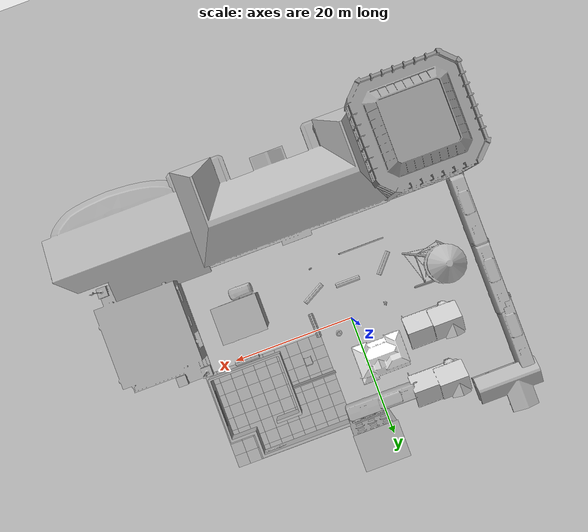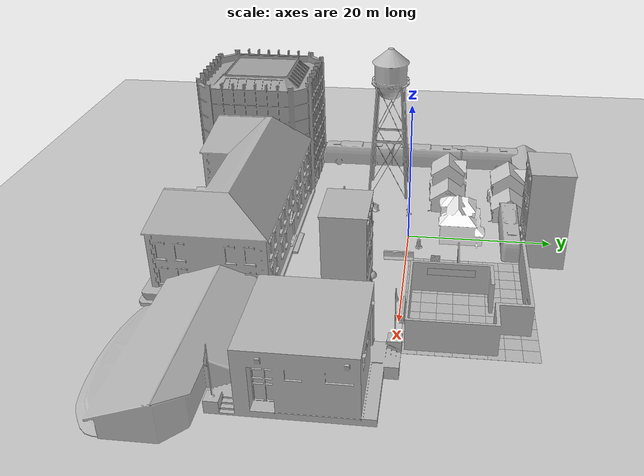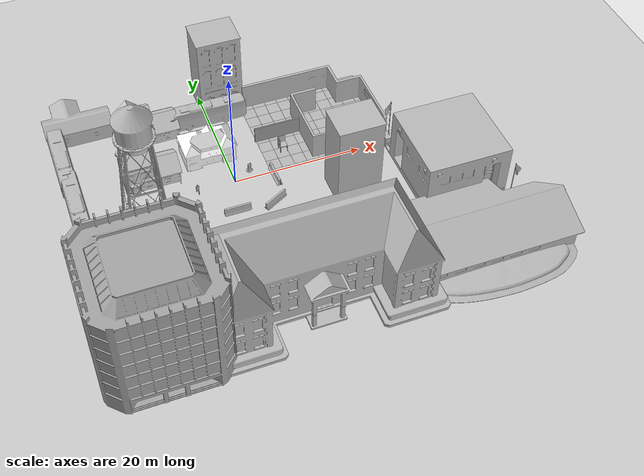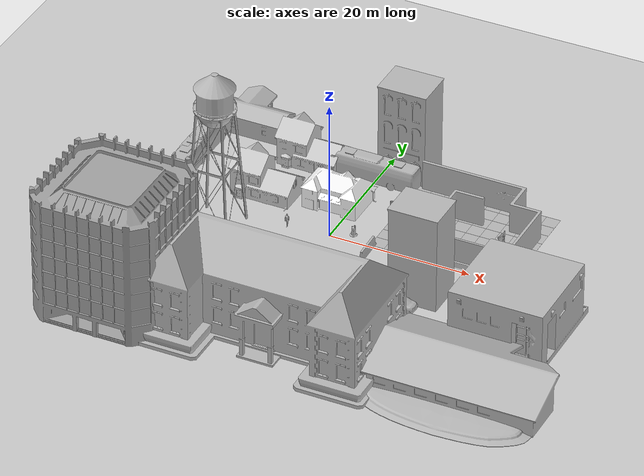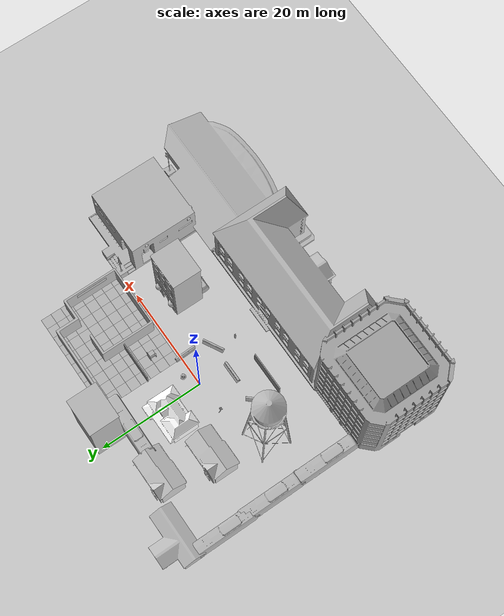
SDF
<sdf version="1.6">
 <world name="default">
  <light name="sun" type="directional">
   <pose>0 0 10 0 -0 0</pose>
   <diffuse>0.8 0.8 0.8 1</diffuse>
   <specular>0.2 0.2 0.2 1</specular>
   <attenuation>
    <range>1000</range>
    <constant>0.9</constant>
    <linear>0.01</linear>
    <quadratic>0.001</quadratic>
   </attenuation>
   <direction>-0.5 0.1 -0.9</direction>
  </light>
  <light name="sun2" type="directional">
   <cast_shadows>0</cast_shadows>
   <pose>0 0 0.5 3.14 -0 0</pose>
   <diffuse>0.8 0.8 0.8 1</diffuse>
   <specular>0.2 0.2 0.2 1</specular>
   <attenuation>
    <range>1000</range>
    <constant>0.9</constant>
    <linear>0.01</linear>
    <quadratic>0.001</quadratic>
   </attenuation>
   <direction>-0.5 0.1 -0.9</direction>
  </light>
  <light name="sun2" type="directional">
   <cast_shadows>0</cast_shadows>
   <pose>0 0 0.1 3.14 -0 0</pose>
   <diffuse>0.8 0.8 0.8 1</diffuse>
   <specular>0.2 0.2 0.2 1</specular>
   <attenuation>
    <range>1000</range>
    <constant>10</constant>
    <linear>0.01</linear>
    <quadratic>0.001</quadratic>
   </attenuation>
   <direction>-0.5 0.1 -0.9</direction>
  </light>
  <model name="ground_plane">
   <pose>0 0 0 0 -0 1.57079</pose>
   <static>1</static>
   <link name="link">
    <collision name="collision">
     <geometry><plane><normal>0 0 1</normal><size>100 100</size></plane></geometry>
     <surface><friction><ode><mu>100000</mu><mu2>100000</mu2></ode></friction></surface>
    </collision>
    <visual name="visual">
     <cast_shadows>0</cast_shadows>
     <geometry><plane><normal>0 0 1</normal><size>32 50</size></plane></geometry>
     <material>
      <script><uri>file://media/materials/scripts/gazebo.material</uri><name>Gazebo/Grey</name></script>
     </material>
    </visual>
    <velocity_decay><linear>0</linear><angular>0</angular></velocity_decay>
   </link>
  </model>
  <physics name="default_physics" default="0" type="ode">
   <max_step_size>0.001</max_step_size>
   <real_time_factor>1</real_time_factor>
   <real_time_update_rate>1000</real_time_update_rate>
  </physics>
  <scene><ambient>0.4 0.4 0.4 1</ambient><background>0.7 0.7 0.7 1</background><shadows>1</shadows></scene>
  <model name="House 3">
   <static>1</static>
   <link name="link">
    <collision name="collision">
     <geometry><mesh><uri>model://house_3/meshes/house_3.dae</uri><scale>1 1 1</scale></mesh></geometry>
    </collision>
    <visual name="visual">
     <geometry><mesh><uri>model://house_3/meshes/house_3.dae</uri><scale>1 1 1</scale></mesh></geometry>
     <material>
      <script>
       <uri>model://house_3/materials/scripts</uri>
       <uri>model://house_3/materials/textures</uri>
       <uri>model://house_1/materials/textures</uri>
       <name>House_3/Diffuse</name>
      </script>
      <shader type="normal_map_object_space">
       <normal_map>model://house_1/materials/textures/House_1_Normal.png</normal_map>
      </shader>
     </material>
    </visual>
    <velocity_decay><linear>0</linear><angular>0</angular></velocity_decay>
   </link>
   <pose>-11.4334 5.35082 0 0 -0 0</pose>
  </model>
  <model name="House 2">
   <static>1</static>
   <link name="link">
    <collision name="collision">
     <geometry><mesh><uri>model://house_2/meshes/house_2.dae</uri><scale>1 1 1</scale></mesh></geometry>
    </collision>
    <visual name="visual">
     <geometry><mesh><uri>model://house_2/meshes/house_2.dae</uri><scale>1 1 1</scale></mesh></geometry>
     <material>
      <script>
       <uri>model://house_2/materials/scripts</uri>
       <uri>model://house_2/materials/textures</uri>
       <uri>model://house_1/materials/textures</uri>
       <name>House_2/Diffuse</name>
      </script>
      <shader type="normal_map_object_space">
       <normal_map>model://house_1/materials/textures/House_1_Normal.png</normal_map>
      </shader>
     </material>
    </visual>
    <velocity_decay><linear>0</linear><angular>0</angular></velocity_decay>
   </link>
   <pose>-2.90396 6.95153 0 0 -0 0</pose>
  </model>
  <model name="jersey_barrier">
   <static>1</static>
   <link name="link">
    <visual name="visual">
     <geometry>
      <mesh><uri>model://jersey_barrier/meshes/jersey_barrier.dae</uri><scale>1 1 1</scale></mesh>
     </geometry>
    </visual>
    <collision name="upright">
     <pose>0 0 0.5715 0 -0 0</pose>
     <geometry><box><size>4.06542 0.3063 1.143</size></box></geometry>
    </collision>
    <collision name="base">
     <pose>0 0 0.032258 0 -0 0</pose>
     <geometry><box><size>4.06542 0.8107 0.064516</size></box></geometry>
    </collision>
    <collision name="base2">
     <pose>0 0 0.1 0 -0 0</pose>
     <geometry><box><size>4.06542 0.65 0.1</size></box></geometry>
    </collision>
    <collision name="base3">
     <pose>0 0 0.2 0 -0 0</pose>
     <geometry><box><size>4.06542 0.5 0.1</size></box></geometry>
    </collision>
    <collision name="left-angle">
     <pose>0 -0.224 0.2401 0.9 -0 0</pose>
     <geometry><box><size>4.06542 0.5 0.064516</size></box></geometry>
    </collision>
    <collision name="right-angle">
     <pose>0 0.224 0.2401 -0.9 0 0</pose>
     <geometry><box><size>4.06542 0.5 0.064516</size></box></geometry>
    </collision>
    <velocity_decay><linear>0</linear><angular>0</angular></velocity_decay>
   </link>
   <pose>4.36849 -5.89471 0 0 -0 0.5</pose>
  </model>
  <model name="jersey_barrier_0">
   <static>1</static>
   <link name="link">
    <visual name="visual">
     <geometry>
      <mesh><uri>model://jersey_barrier/meshes/jersey_barrier.dae</uri><scale>1 1 1</scale></mesh>
     </geometry>
    </visual>
    <collision name="upright">
     <pose>0 0 0.5715 0 -0 0</pose>
     <geometry><box><size>4.06542 0.3063 1.143</size></box></geometry>
    </collision>
    <collision name="base">
     <pose>0 0 0.032258 0 -0 0</pose>
     <geometry><box><size>4.06542 0.8107 0.064516</size></box></geometry>
    </collision>
    <collision name="base2">
     <pose>0 0 0.1 0 -0 0</pose>
     <geometry><box><size>4.06542 0.65 0.1</size></box></geometry>
    </collision>
    <collision name="base3">
     <pose>0 0 0.2 0 -0 0</pose>
     <geometry><box><size>4.06542 0.5 0.1</size></box></geometry>
    </collision>
    <collision name="left-angle">
     <pose>0 -0.224 0.2401 0.9 -0 0</pose>
     <geometry><box><size>4.06542 0.5 0.064516</size></box></geometry>
    </collision>
    <collision name="right-angle">
     <pose>0 0.224 0.2401 -0.9 0 0</pose>
     <geometry><box><size>4.06542 0.5 0.064516</size></box></geometry>
    </collision>
    <velocity_decay><linear>0</linear><angular>0</angular></velocity_decay>
   </link>
   <pose>6 -1 0 0 -0 1.6</pose>
  </model>
  <model name="grey_wall">
   <static>1</static>
   <link name="link">
    <pose>0 0 1.4 0 -0 0</pose>
    <collision name="collision"><geometry><box><size>7.5 0.2 2.8</size></box></geometry></collision>
    <visual name="visual">
     <cast_shadows>0</cast_shadows>
     <geometry><box><size>7.5 0.2 2.8</size></box></geometry>
     <material>
      <script>
       <uri>model://grey_wall/materials/scripts</uri>
       <uri>model://grey_wall/materials/textures</uri>
       <name>vrc/grey_wall</name>
      </script>
     </material>
    </visual>
    <velocity_decay><linear>0</linear><angular>0</angular></velocity_decay>
   </link>
   <pose>9.22906 7.08542 0 0 -0 0</pose>
  </model>
  <model name="nist_elevated_floor_120">
   <static>1</static>
   <link name="nist_elevated_floor_120">
    <collision name="collision">
     <geometry>
      <mesh><uri>model://nist_elevated_floor_120/meshes/nist_elevated_floor_120.dae</uri><scale>1 1 1</scale></mesh>
     </geometry>
    </collision>
    <visual name="visual">
     <geometry>
      <mesh><uri>model://nist_elevated_floor_120/meshes/nist_elevated_floor_120.dae</uri><scale>1 1 1</scale></mesh>
     </geometry>
    </visual>
    <velocity_decay><linear>0</linear><angular>0</angular></velocity_decay>
   </link>
   <pose>9 4 0 0 -0 0</pose>
  </model>
  <model name="nist_maze_wall_240">
   <static>1</static>
   <link name="nist__maze_wall_240_link">
    <collision name="collision">
     <geometry>
      <mesh><uri>model://nist_maze_wall_240/meshes/nist_maze_wall_240.dae</uri><scale>1 1 1</scale></mesh>
     </geometry>
    </collision>
    <visual name="visual">
     <geometry>
      <mesh><uri>model://nist_maze_wall_240/meshes/nist_maze_wall_240.dae</uri><scale>1 1 1</scale></mesh>
     </geometry>
    </visual>
    <velocity_decay><linear>0</linear><angular>0</angular></velocity_decay>
   </link>
   <pose>9 4 0 0 -0 0</pose>
  </model>
  <model name="nist">
   <static>1</static>
   <link name="nist_maze_wall_triple_holes_120_link">
    <collision name="collision">
     <geometry>
      <mesh>
       <uri>model://nist_maze_wall_triple_holes_120/meshes/nist_maze_wall_triple_holes_120.dae</uri>
       <scale>1 1 1</scale>
      </mesh>
     </geometry>
    </collision>
    <visual name="visual">
     <geometry>
      <mesh>
       <uri>model://nist_maze_wall_triple_holes_120/meshes/nist_maze_wall_triple_holes_120.dae</uri>
       <scale>1 1 1</scale>
      </mesh>
     </geometry>
    </visual>
    <velocity_decay><linear>0</linear><angular>0</angular></velocity_decay>
   </link>
   <pose>9.02578 4.02961 1.2 0 -0 1.6</pose>
  </model>
  <gravity>0 0 -9.8</gravity>
  <magnetic_field>6e-06 2.3e-05 -4.2e-05</magnetic_field>
  <atmosphere type="adiabatic"/>
  <spherical_coordinates>
   <surface_model>EARTH_WGS84</surface_model>
   <latitude_deg>0</latitude_deg>
   <longitude_deg>0</longitude_deg>
   <elevation>0</elevation>
   <heading_deg>0</heading_deg>
  </spherical_coordinates>
  <model name="law_office">
   <static>1</static>
   <link name="link">
    <collision name="collision">
     <pose>0 0 6.96244 0 -0 0</pose>
     <geometry><box><size>6.84401 5.43165 13.9249</size></box></geometry>
    </collision>
    <visual name="visual">
     <geometry><mesh><uri>model://law_office/meshes/law_office.dae</uri><scale>1 1 1</scale></mesh></geometry>
    </visual>
   </link>
   <pose>16.2672 -6.65404 0 0 -0 3.14</pose>
  </model>
  <model name="water_tower">
   <static>1</static>
   <link name="link">
    <collision name="collision">
     <geometry><mesh><uri>model://water_tower/meshes/water_tower.dae</uri><scale>1 1 1</scale></mesh></geometry>
    </collision>
    <visual name="visual">
     <geometry><mesh><uri>model://water_tower/meshes/water_tower.dae</uri><scale>1 1 1</scale></mesh></geometry>
    </visual>
   </link>
   <pose>-14.4505 -4.0045 0 0 -0 0</pose>
  </model>
  <model name="jersey_barrier_1">
   <static>1</static>
   <link name="link">
    <visual name="visual">
     <geometry>
      <mesh><uri>model://jersey_barrier/meshes/jersey_barrier.dae</uri><scale>1 1 1</scale></mesh>
     </geometry>
    </visual>
    <collision name="upright">
     <pose>0 0 0.5715 0 -0 0</pose>
     <geometry><box><size>4.06542 0.3063 1.143</size></box></geometry>
    </collision>
    <collision name="base">
     <pose>0 0 0.032258 0 -0 0</pose>
     <geometry><box><size>4.06542 0.8107 0.064516</size></box></geometry>
    </collision>
    <collision name="base2">
     <pose>0 0 0.1 0 -0 0</pose>
     <geometry><box><size>4.06542 0.65 0.1</size></box></geometry>
    </collision>
    <collision name="base3">
     <pose>0 0 0.2 0 -0 0</pose>
     <geometry><box><size>4.06542 0.5 0.1</size></box></geometry>
    </collision>
    <collision name="left-angle">
     <pose>0 -0.224 0.2401 0.9 -0 0</pose>
     <geometry><box><size>4.06542 0.5 0.064516</size></box></geometry>
    </collision>
    <collision name="right-angle">
     <pose>0 0.224 0.2401 -0.9 0 0</pose>
     <geometry><box><size>4.06542 0.5 0.064516</size></box></geometry>
    </collision>
   </link>
   <pose>-1.46939 -5.79868 0 0 -0 0</pose>
  </model>
  <model name="jersey_barrier_2">
   <static>1</static>
   <link name="link">
    <visual name="visual">
     <geometry>
      <mesh><uri>model://jersey_barrier/meshes/jersey_barrier.dae</uri><scale>1 1 1</scale></mesh>
     </geometry>
    </visual>
    <collision name="upright">
     <pose>0 0 0.5715 0 -0 0</pose>
     <geometry><box><size>4.06542 0.3063 1.143</size></box></geometry>
    </collision>
    <collision name="base">
     <pose>0 0 0.032258 0 -0 0</pose>
     <geometry><box><size>4.06542 0.8107 0.064516</size></box></geometry>
    </collision>
    <collision name="base2">
     <pose>0 0 0.1 0 -0 0</pose>
     <geometry><box><size>4.06542 0.65 0.1</size></box></geometry>
    </collision>
    <collision name="base3">
     <pose>0 0 0.2 0 -0 0</pose>
     <geometry><box><size>4.06542 0.5 0.1</size></box></geometry>
    </collision>
    <collision name="left-angle">
     <pose>0 -0.224 0.2401 0.9 -0 0</pose>
     <geometry><box><size>4.06542 0.5 0.064516</size></box></geometry>
    </collision>
    <collision name="right-angle">
     <pose>0 0.224 0.2401 -0.9 0 0</pose>
     <geometry><box><size>4.06542 0.5 0.064516</size></box></geometry>
    </collision>
   </link>
   <pose>-8.02163 -6.59824 0 0 -0 0.85</pose>
  </model>
  <model name="grey_wall_0">
   <static>1</static>
   <link name="link">
    <pose>0 0 1.4 0 -0 0</pose>
    <collision name="collision"><geometry><box><size>7.5 0.2 2.8</size></box></geometry></collision>
    <visual name="visual">
     <cast_shadows>0</cast_shadows>
     <geometry><box><size>7.5 0.2 2.8</size></box></geometry>
     <material>
      <script>
       <uri>model://grey_wall/materials/scripts</uri>
       <uri>model://grey_wall/materials/textures</uri>
       <name>vrc/grey_wall</name>
      </script>
     </material>
    </visual>
   </link>
   <pose>-5.40128 -10.5 0 0 -0 0</pose>
  </model>
  <model name="jersey_barrier_3">
   <static>1</static>
   <link name="link">
    <visual name="visual">
     <geometry>
      <mesh><uri>model://jersey_barrier/meshes/jersey_barrier.dae</uri><scale>1 1 1</scale></mesh>
     </geometry>
    </visual>
    <collision name="upright">
     <pose>0 0 0.5715 0 -0 0</pose>
     <geometry><box><size>4.06542 0.3063 1.143</size></box></geometry>
    </collision>
    <collision name="base">
     <pose>0 0 0.032258 0 -0 0</pose>
     <geometry><box><size>4.06542 0.8107 0.064516</size></box></geometry>
    </collision>
    <collision name="base2">
     <pose>0 0 0.1 0 -0 0</pose>
     <geometry><box><size>4.06542 0.65 0.1</size></box></geometry>
    </collision>
    <collision name="base3">
     <pose>0 0 0.2 0 -0 0</pose>
     <geometry><box><size>4.06542 0.5 0.1</size></box></geometry>
    </collision>
    <collision name="left-angle">
     <pose>0 -0.224 0.2401 0.9 -0 0</pose>
     <geometry><box><size>4.06542 0.5 0.064516</size></box></geometry>
    </collision>
    <collision name="right-angle">
     <pose>0 0.224 0.2401 -0.9 0 0</pose>
     <geometry><box><size>4.06542 0.5 0.064516</size></box></geometry>
    </collision>
   </link>
   <pose>18.2364 0.418347 0 0 -0 0</pose>
  </model>
  <model name="person_standing">
   <link name="link">
    <inertial>
     <pose>0 -0.1 0.95 0 -0 0</pose>
     <mass>80</mass>
     <inertia><ixx>24.88</ixx><ixy>0</ixy><ixz>0</ixz><iyy>25.73</iyy><iyz>0</iyz><izz>2.48</izz></inertia>
    </inertial>
    <collision name="bottom">
     <pose>0 -0.1 0.01 0 -0 0</pose>
     <geometry><box><size>0.5 0.35 0.02</size></box></geometry>
    </collision>
    <collision name="person">
     <pose>0 0 0.02 0.04 -0 0</pose>
     <geometry><mesh><uri>model://person_standing/meshes/standing.dae</uri><scale>1 1 1</scale></mesh></geometry>
    </collision>
    <visual name="visual">
     <pose>0 0 0.02 0.04 -0 0</pose>
     <geometry><mesh><uri>model://person_standing/meshes/standing.dae</uri><scale>1 1 1</scale></mesh></geometry>
    </visual>
   </link>
   <pose>3.49958 -9.80762 -1e-06 -1e-06 1e-06 0.008643</pose>
  </model>
  <model name="person_walking">
   <link name="link">
    <inertial>
     <pose>0 0 0.95 0 -0 0</pose>
     <mass>80</mass>
     <inertia><ixx>27.82</ixx><ixy>0</ixy><ixz>0</ixz><iyy>24.88</iyy><iyz>0</iyz><izz>4.57</izz></inertia>
    </inertial>
    <collision name="bottom">
     <pose>0 0 0.01 0 -0 0</pose>
     <geometry><box><size>0.35 0.75 0.02</size></box></geometry>
    </collision>
    <collision name="person">
     <pose>0 0 -0.02 0 -0 0</pose>
     <geometry><mesh><uri>model://person_walking/meshes/walking.dae</uri><scale>1 1 1</scale></mesh></geometry>
    </collision>
    <visual name="visual">
     <pose>0 0 -0.02 0 -0 0</pose>
     <geometry><mesh><uri>model://person_walking/meshes/walking.dae</uri><scale>1 1 1</scale></mesh></geometry>
    </visual>
   </link>
   <pose>-5.95501 -0.332973 -1e-06 -2e-06 1e-06 0.010121</pose>
  </model>
  <model name="House 3_0">
   <static>1</static>
   <link name="link">
    <collision name="collision">
     <geometry><mesh><uri>model://house_3/meshes/house_3.dae</uri><scale>1 1 1</scale></mesh></geometry>
    </collision>
    <visual name="visual">
     <geometry><mesh><uri>model://house_3/meshes/house_3.dae</uri><scale>1 1 1</scale></mesh></geometry>
     <material>
      <script>
       <uri>model://house_3/materials/scripts</uri>
       <uri>model://house_3/materials/textures</uri>
       <name>House_3/Diffuse</name>
      </script>
     </material>
    </visual>
   </link>
   <pose>-9.13577 14.4735 0 0 -0 0</pose>
  </model>
  <model name="Construction Barrel_0">
   <static>1</static>
   <link name="link">
    <inertial>
     <pose>0 0 0.4 0 -0 0</pose>
     <mass>500</mass>
     <inertia><ixx>51.2096</ixx><iyy>51.2096</iyy><izz>25</izz><ixy>0</ixy><ixz>0</ixz><iyz>0</iyz></inertia>
    </inertial>
    <collision name="collision">
     <geometry>
      <mesh><uri>model://construction_barrel/meshes/construction_barrel.dae</uri><scale>1 1 1</scale></mesh>
     </geometry>
    </collision>
    <visual name="visual">
     <geometry>
      <mesh><uri>model://construction_barrel/meshes/construction_barrel.dae</uri><scale>1 1 1</scale></mesh>
     </geometry>
    </visual>
   </link>
   <pose>2.75498 1.58999 0 0 -0 0</pose>
  </model>
  <model name="Office Building">
   <static>1</static>
   <link name="link">
    <collision name="collision">
     <geometry><mesh><uri>model://office_building/meshes/office_building.dae</uri></mesh></geometry>
    </collision>
    <visual name="visual">
     <geometry><mesh><uri>model://office_building/meshes/office_building.dae</uri></mesh></geometry>
    </visual>
   </link>
   <pose>-18.2899 -24.5769 0 0 -0 0</pose>
  </model>
  <model name="post_office">
   <static>1</static>
   <link name="link">
    <collision name="collision">
     <geometry><mesh><uri>model://post_office/meshes/post_office.dae</uri></mesh></geometry>
    </collision>
    <visual name="visual">
     <geometry><mesh><uri>model://post_office/meshes/post_office.dae</uri></mesh></geometry>
    </visual>
   </link>
   <pose>-19.9426 17.8741 0 0 -0 0</pose>
  </model>
  <model name="school">
   <static>1</static>
   <link name="link">
    <collision name="collision">
     <geometry><mesh><uri>model://school/meshes/school.dae</uri></mesh></geometry>
    </collision>
    <visual name="visual"><geometry><mesh><uri>model://school/meshes/school.dae</uri></mesh></geometry></visual>
   </link>
   <pose>3.77452 -21.39 0 0 -0 0</pose>
  </model>
  <model name="osrf_first_office">
   <static>1</static>
   <link name="link">
    <collision name="collision">
     <geometry><mesh><uri>model://osrf_first_office/meshes/osrf_first_office.dae</uri></mesh></geometry>
    </collision>
    <visual name="visual">
     <geometry><mesh><uri>model://osrf_first_office/meshes/osrf_first_office.dae</uri></mesh></geometry>
    </visual>
   </link>
   <pose>30.2865 -22.0351 0 0 -0 0</pose>
  </model>
  <model name="police_station">
   <static>1</static>
   <link name="link">
    <collision name="collision_main">
     <pose>0 0 4.28998 0 -0 0</pose>
     <geometry><box><size>13.037 13.037 8.57995</size></box></geometry>
    </collision>
    <collision name="collision_landing">
     <pose>0 0 0.464086 0 -0 0</pose>
     <geometry><box><size>13.037 16.2446 0.928173</size></box></geometry>
    </collision>
    <visual name="visual">
     <geometry><mesh><uri>model://police_station/meshes/police_station.dae</uri></mesh></geometry>
    </visual>
   </link>
   <pose>30.6595 -9.0985 0 0 -0 0</pose>
  </model>
  <model name="Starting Pen">
   <static>1</static>
   <link name="link">
    <collision name="wall_01">
     <pose>-0 0 2.14 0 -0 0</pose>
     <geometry><box><size>12.15 0.31 4.28</size></box></geometry>
    </collision>
    <collision name="wall_02">
     <pose>-5.28 14.3205 2.14 0 -0 0</pose>
     <geometry><box><size>14.8 0.46 4.28</size></box></geometry>
    </collision>
    <collision name="wall_03">
     <pose>-5.91 5 2.14 0 -0 0</pose>
     <geometry><box><size>0.385 10.3 4.28</size></box></geometry>
    </collision>
    <collision name="wall_04">
     <pose>5.91 5.161 2.14 0 -0 0</pose>
     <geometry><box><size>0.385 10.66 4.28</size></box></geometry>
    </collision>
    <collision name="wall_05">
     <pose>3.9 10.285 2.14 0 -0 0</pose>
     <geometry><box><size>4.38 0.45 4.28</size></box></geometry>
    </collision>
    <collision name="wall_06">
     <pose>-4 9.95 2.14 0 -0 0</pose>
     <geometry><box><size>4.25 0.45 4.28</size></box></geometry>
    </collision>
    <collision name="wall_07">
     <pose>1.94 12.3 2.14 0 -0 0</pose>
     <geometry><box><size>0.45 4.5 4.28</size></box></geometry>
    </collision>
    <collision name="wall_arrow">
     <pose>-0.232 14.03 2.46 0 -0 0</pose>
     <geometry><box><size>3.33 0.12 1.16</size></box></geometry>
    </collision>
    <collision name="collision_floor">
     <pose>-3.21 7.355 0 0 -0 0</pose>
     <geometry><box><size>20 16 0.01</size></box></geometry>
     <surface><friction><ode><mu>100</mu><mu2>50</mu2></ode></friction></surface>
    </collision>
    <visual name="visual_osrf">
     <pose>-5.74 4.99 3 0 -0 0</pose>
     <geometry><box><size>0.01 6 1</size></box></geometry>
     <material>
      <script>
       <uri>model://starting_pen/materials/scripts</uri>
       <uri>model://starting_pen/materials/textures</uri>
       <name>StartingPen/OSRF</name>
      </script>
     </material>
    </visual>
    <visual name="visual_osrf_2">
     <pose>5.74 4.99 3 0 -0 0</pose>
     <geometry><box><size>0.01 6 1</size></box></geometry>
     <material>
      <script>
       <uri>model://starting_pen/materials/scripts</uri>
       <uri>model://starting_pen/materials/textures</uri>
       <name>StartingPen/OSRF</name>
      </script>
     </material>
    </visual>
    <visual name="visual">
     <geometry><mesh><uri>model://starting_pen/meshes/starting_pen.dae</uri></mesh></geometry>
    </visual>
    <visual name="visual_floor_0">
     <pose>-12.21 0.35 0 0 -0 0</pose>
     <geometry><box><size>2 2 0.01</size></box></geometry>
     <material>
      <script>
       <uri>model://starting_pen/materials/scripts</uri>
       <uri>model://starting_pen/materials/textures</uri>
       <name>StartingPen/Floor</name>
      </script>
     </material>
    </visual>
    <visual name="visual_floor_1">
     <pose>-10.21 0.35 0 0 -0 0</pose>
     <geometry><box><size>2 2 0.01</size></box></geometry>
     <material>
      <script>
       <uri>model://starting_pen/materials/scripts</uri>
       <uri>model://starting_pen/materials/textures</uri>
       <name>StartingPen/Floor</name>
      </script>
     </material>
    </visual>
    <visual name="visual_floor_2">
     <pose>-8.21 0.35 0 0 -0 0</pose>
     <geometry><box><size>2 2 0.01</size></box></geometry>
     <material>
      <script>
       <uri>model://starting_pen/materials/scripts</uri>
       <uri>model://starting_pen/materials/textures</uri>
       <name>StartingPen/Floor</name>
      </script>
     </material>
    </visual>
    <visual name="visual_floor_3">
     <pose>-6.21 0.35 0 0 -0 0</pose>
     <geometry><box><size>2 2 0.01</size></box></geometry>
     <material>
      <script>
       <uri>model://starting_pen/materials/scripts</uri>
       <uri>model://starting_pen/materials/textures</uri>
       <name>StartingPen/Floor</name>
      </script>
     </material>
    </visual>
    <visual name="visual_floor_4">
     <pose>-4.21 0.35 0 0 -0 0</pose>
     <geometry><box><size>2 2 0.01</size></box></geometry>
     <material>
      <script>
       <uri>model://starting_pen/materials/scripts</uri>
       <uri>model://starting_pen/materials/textures</uri>
       <name>StartingPen/Floor</name>
      </script>
     </material>
    </visual>
    <visual name="visual_floor_5">
     <pose>-2.21 0.35 0 0 -0 0</pose>
     <geometry><box><size>2 2 0.01</size></box></geometry>
     <material>
      <script>
       <uri>model://starting_pen/materials/scripts</uri>
       <uri>model://starting_pen/materials/textures</uri>
       <name>StartingPen/Floor</name>
      </script>
     </material>
    </visual>
    <visual name="visual_floor_6">
     <pose>-0.21 0.35 0 0 -0 0</pose>
     <geometry><box><size>2 2 0.01</size></box></geometry>
     <material>
      <script>
       <uri>model://starting_pen/materials/scripts</uri>
       <uri>model://starting_pen/materials/textures</uri>
       <name>StartingPen/Floor</name>
      </script>
     </material>
    </visual>
    <visual name="visual_floor_7">
     <pose>1.79 0.35 0 0 -0 1.5707</pose>
     <geometry><box><size>2 2 0.01</size></box></geometry>
     <material>
      <script>
       <uri>model://starting_pen/materials/scripts</uri>
       <uri>model://starting_pen/materials/textures</uri>
       <name>StartingPen/FloorStripped</name>
      </script>
     </material>
    </visual>
    <visual name="visual_floor_8">
     <pose>3.79 0.35 0 0 -0 0</pose>
     <geometry><box><size>2 2 0.01</size></box></geometry>
     <material>
      <script>
       <uri>model://starting_pen/materials/scripts</uri>
       <uri>model://starting_pen/materials/textures</uri>
       <name>StartingPen/Floor</name>
      </script>
     </material>
    </visual>
    <visual name="visual_floor_9">
     <pose>5.79 0.35 0 0 -0 0</pose>
     <geometry><box><size>2 2 0.01</size></box></geometry>
     <material>
      <script>
       <uri>model://starting_pen/materials/scripts</uri>
       <uri>model://starting_pen/materials/textures</uri>
       <name>StartingPen/Floor</name>
      </script>
     </material>
    </visual>
    <visual name="visual_floor_10">
     <pose>-12.21 2.35 0 0 -0 1.5707</pose>
     <geometry><box><size>2 2 0.01</size></box></geometry>
     <material>
      <script>
       <uri>model://starting_pen/materials/scripts</uri>
       <uri>model://starting_pen/materials/textures</uri>
       <name>StartingPen/FloorStripped</name>
      </script>
     </material>
    </visual>
    <visual name="visual_floor_11">
     <pose>-10.21 2.35 0 0 -0 0</pose>
     <geometry><box><size>2 2 0.01</size></box></geometry>
     <material>
      <script>
       <uri>model://starting_pen/materials/scripts</uri>
       <uri>model://starting_pen/materials/textures</uri>
       <name>StartingPen/Floor</name>
      </script>
     </material>
    </visual>
    <visual name="visual_floor_12">
     <pose>-8.21 2.35 0 0 -0 0</pose>
     <geometry><box><size>2 2 0.01</size></box></geometry>
     <material>
      <script>
       <uri>model://starting_pen/materials/scripts</uri>
       <uri>model://starting_pen/materials/textures</uri>
       <name>StartingPen/Floor</name>
      </script>
     </material>
    </visual>
    <visual name="visual_floor_13">
     <pose>-6.21 2.35 0 0 -0 0</pose>
     <geometry><box><size>2 2 0.01</size></box></geometry>
     <material>
      <script>
       <uri>model://starting_pen/materials/scripts</uri>
       <uri>model://starting_pen/materials/textures</uri>
       <name>StartingPen/Floor</name>
      </script>
     </material>
    </visual>
    <visual name="visual_floor_14">
     <pose>-4.21 2.35 0 0 -0 0</pose>
     <geometry><box><size>2 2 0.01</size></box></geometry>
     <material>
      <script>
       <uri>model://starting_pen/materials/scripts</uri>
       <uri>model://starting_pen/materials/textures</uri>
       <name>StartingPen/Floor</name>
      </script>
     </material>
    </visual>
    <visual name="visual_floor_15">
     <pose>-2.21 2.35 0 0 -0 0</pose>
     <geometry><box><size>2 2 0.01</size></box></geometry>
     <material>
      <script>
       <uri>model://starting_pen/materials/scripts</uri>
       <uri>model://starting_pen/materials/textures</uri>
       <name>StartingPen/Floor</name>
      </script>
     </material>
    </visual>
    <visual name="visual_floor_16">
     <pose>-0.21 2.35 0 0 -0 1.5707</pose>
     <geometry><box><size>2 2 0.01</size></box></geometry>
     <material>
      <script>
       <uri>model://starting_pen/materials/scripts</uri>
       <uri>model://starting_pen/materials/textures</uri>
       <name>StartingPen/FloorStripped</name>
      </script>
     </material>
    </visual>
    <visual name="visual_floor_17">
     <pose>1.79 2.35 0 0 -0 1.5707</pose>
     <geometry><box><size>2 2 0.01</size></box></geometry>
     <material>
      <script>
       <uri>model://starting_pen/materials/scripts</uri>
       <uri>model://starting_pen/materials/textures</uri>
       <name>StartingPen/Floor</name>
      </script>
     </material>
    </visual>
    <visual name="visual_floor_18">
     <pose>3.79 2.35 0 0 -0 0</pose>
     <geometry><box><size>2 2 0.01</size></box></geometry>
     <material>
      <script>
       <uri>model://starting_pen/materials/scripts</uri>
       <uri>model://starting_pen/materials/textures</uri>
       <name>StartingPen/Floor</name>
      </script>
     </material>
    </visual>
    <visual name="visual_floor_19">
     <pose>5.79 2.35 0 0 -0 0</pose>
     <geometry><box><size>2 2 0.01</size></box></geometry>
     <material>
      <script>
       <uri>model://starting_pen/materials/scripts</uri>
       <uri>model://starting_pen/materials/textures</uri>
       <name>StartingPen/Floor</name>
      </script>
     </material>
    </visual>
    <visual name="visual_floor_20">
     <pose>-12.21 4.35 0 0 -0 0</pose>
     <geometry><box><size>2 2 0.01</size></box></geometry>
     <material>
      <script>
       <uri>model://starting_pen/materials/scripts</uri>
       <uri>model://starting_pen/materials/textures</uri>
       <name>StartingPen/Floor</name>
      </script>
     </material>
    </visual>
    <visual name="visual_floor_21">
     <pose>-10.21 4.35 0 0 -0 0</pose>
     <geometry><box><size>2 2 0.01</size></box></geometry>
     <material>
      <script>
       <uri>model://starting_pen/materials/scripts</uri>
       <uri>model://starting_pen/materials/textures</uri>
       <name>StartingPen/Floor</name>
      </script>
     </material>
    </visual>
    <visual name="visual_floor_22">
     <pose>-8.21 4.35 0 0 -0 1.5707</pose>
     <geometry><box><size>2 2 0.01</size></box></geometry>
     <material>
      <script>
       <uri>model://starting_pen/materials/scripts</uri>
       <uri>model://starting_pen/materials/textures</uri>
       <name>StartingPen/FloorStripped</name>
      </script>
     </material>
    </visual>
    <visual name="visual_floor_23">
     <pose>-6.21 4.35 0 0 -0 0</pose>
     <geometry><box><size>2 2 0.01</size></box></geometry>
     <material>
      <script>
       <uri>model://starting_pen/materials/scripts</uri>
       <uri>model://starting_pen/materials/textures</uri>
       <name>StartingPen/Floor</name>
      </script>
     </material>
    </visual>
    <visual name="visual_floor_24">
     <pose>-4.21 4.35 0 0 -0 0</pose>
     <geometry><box><size>2 2 0.01</size></box></geometry>
     <material>
      <script>
       <uri>model://starting_pen/materials/scripts</uri>
       <uri>model://starting_pen/materials/textures</uri>
       <name>StartingPen/Floor</name>
      </script>
     </material>
    </visual>
    <visual name="visual_floor_25">
     <pose>-2.21 4.35 0 0 -0 0</pose>
     <geometry><box><size>2 2 0.01</size></box></geometry>
     <material>
      <script>
       <uri>model://starting_pen/materials/scripts</uri>
       <uri>model://starting_pen/materials/textures</uri>
       <name>StartingPen/Floor</name>
      </script>
     </material>
    </visual>
    <visual name="visual_floor_26">
     <pose>-0.21 4.35 0 0 -0 0</pose>
     <geometry><box><size>2 2 0.01</size></box></geometry>
     <material>
      <script>
       <uri>model://starting_pen/materials/scripts</uri>
       <uri>model://starting_pen/materials/textures</uri>
       <name>StartingPen/Floor</name>
      </script>
     </material>
    </visual>
    <visual name="visual_floor_27">
     <pose>1.79 4.35 0 0 -0 0</pose>
     <geometry><box><size>2 2 0.01</size></box></geometry>
     <material>
      <script>
       <uri>model://starting_pen/materials/scripts</uri>
       <uri>model://starting_pen/materials/textures</uri>
       <name>StartingPen/Floor</name>
      </script>
     </material>
    </visual>
    <visual name="visual_floor_28">
     <pose>3.79 4.35 0 0 -0 0</pose>
     <geometry><box><size>2 2 0.01</size></box></geometry>
     <material>
      <script>
       <uri>model://starting_pen/materials/scripts</uri>
       <uri>model://starting_pen/materials/textures</uri>
       <name>StartingPen/Floor</name>
      </script>
     </material>
    </visual>
    <visual name="visual_floor_29">
     <pose>5.79 4.35 0 0 -0 1.5707</pose>
     <geometry><box><size>2 2 0.01</size></box></geometry>
     <material>
      <script>
       <uri>model://starting_pen/materials/scripts</uri>
       <uri>model://starting_pen/materials/textures</uri>
       <name>StartingPen/FloorStripped</name>
      </script>
     </material>
    </visual>
    <visual name="visual_floor_30">
     <pose>-12.21 6.35 0 0 -0 0</pose>
     <geometry><box><size>2 2 0.01</size></box></geometry>
     <material>
      <script>
       <uri>model://starting_pen/materials/scripts</uri>
       <uri>model://starting_pen/materials/textures</uri>
       <name>StartingPen/Floor</name>
      </script>
     </material>
    </visual>
    <visual name="visual_floor_31">
     <pose>-10.21 6.35 0 0 -0 0</pose>
     <geometry><box><size>2 2 0.01</size></box></geometry>
     <material>
      <script>
       <uri>model://starting_pen/materials/scripts</uri>
       <uri>model://starting_pen/materials/textures</uri>
       <name>StartingPen/Floor</name>
      </script>
     </material>
    </visual>
    <visual name="visual_floor_32">
     <pose>-8.21 6.35 0 0 -0 0</pose>
     <geometry><box><size>2 2 0.01</size></box></geometry>
     <material>
      <script>
       <uri>model://starting_pen/materials/scripts</uri>
       <uri>model://starting_pen/materials/textures</uri>
       <name>StartingPen/Floor</name>
      </script>
     </material>
    </visual>
    <visual name="visual_floor_33">
     <pose>-6.21 6.35 0 0 -0 1.5707</pose>
     <geometry><box><size>2 2 0.01</size></box></geometry>
     <material>
      <script>
       <uri>model://starting_pen/materials/scripts</uri>
       <uri>model://starting_pen/materials/textures</uri>
       <name>StartingPen/FloorStripped</name>
      </script>
     </material>
    </visual>
    <visual name="visual_floor_34">
     <pose>-4.21 6.35 0 0 -0 0</pose>
     <geometry><box><size>2 2 0.01</size></box></geometry>
     <material>
      <script>
       <uri>model://starting_pen/materials/scripts</uri>
       <uri>model://starting_pen/materials/textures</uri>
       <name>StartingPen/Floor</name>
      </script>
     </material>
    </visual>
    <visual name="visual_floor_35">
     <pose>-2.21 6.35 0 0 -0 1.5707</pose>
     <geometry><box><size>2 2 0.01</size></box></geometry>
     <material>
      <script>
       <uri>model://starting_pen/materials/scripts</uri>
       <uri>model://starting_pen/materials/textures</uri>
       <name>StartingPen/FloorStripped</name>
      </script>
     </material>
    </visual>
    <visual name="visual_floor_36">
     <pose>-0.21 6.35 0 0 -0 0</pose>
     <geometry><box><size>2 2 0.01</size></box></geometry>
     <material>
      <script>
       <uri>model://starting_pen/materials/scripts</uri>
       <uri>model://starting_pen/materials/textures</uri>
       <name>StartingPen/Floor</name>
      </script>
     </material>
    </visual>
    <visual name="visual_floor_37">
     <pose>1.79 6.35 0 0 -0 0</pose>
     <geometry><box><size>2 2 0.01</size></box></geometry>
     <material>
      <script>
       <uri>model://starting_pen/materials/scripts</uri>
       <uri>model://starting_pen/materials/textures</uri>
       <name>StartingPen/Floor</name>
      </script>
     </material>
    </visual>
    <visual name="visual_floor_38">
     <pose>3.79 6.35 0 0 -0 0</pose>
     <geometry><box><size>2 2 0.01</size></box></geometry>
     <material>
      <script>
       <uri>model://starting_pen/materials/scripts</uri>
       <uri>model://starting_pen/materials/textures</uri>
       <name>StartingPen/Floor</name>
      </script>
     </material>
    </visual>
    <visual name="visual_floor_39">
     <pose>5.79 6.35 0 0 -0 0</pose>
     <geometry><box><size>2 2 0.01</size></box></geometry>
     <material>
      <script>
       <uri>model://starting_pen/materials/scripts</uri>
       <uri>model://starting_pen/materials/textures</uri>
       <name>StartingPen/Floor</name>
      </script>
     </material>
    </visual>
    <visual name="visual_floor_40">
     <pose>-12.21 8.35 0 0 -0 0</pose>
     <geometry><box><size>2 2 0.01</size></box></geometry>
     <material>
      <script>
       <uri>model://starting_pen/materials/scripts</uri>
       <uri>model://starting_pen/materials/textures</uri>
       <name>StartingPen/Floor</name>
      </script>
     </material>
    </visual>
    <visual name="visual_floor_41">
     <pose>-10.21 8.35 0 0 -0 0</pose>
     <geometry><box><size>2 2 0.01</size></box></geometry>
     <material>
      <script>
       <uri>model://starting_pen/materials/scripts</uri>
       <uri>model://starting_pen/materials/textures</uri>
       <name>StartingPen/Floor</name>
      </script>
     </material>
    </visual>
    <visual name="visual_floor_42">
     <pose>-8.21 8.35 0 0 -0 1.5707</pose>
     <geometry><box><size>2 2 0.01</size></box></geometry>
     <material>
      <script>
       <uri>model://starting_pen/materials/scripts</uri>
       <uri>model://starting_pen/materials/textures</uri>
       <name>StartingPen/FloorStripped</name>
      </script>
     </material>
    </visual>
    <visual name="visual_floor_43">
     <pose>-6.21 8.35 0 0 -0 0</pose>
     <geometry><box><size>2 2 0.01</size></box></geometry>
     <material>
      <script>
       <uri>model://starting_pen/materials/scripts</uri>
       <uri>model://starting_pen/materials/textures</uri>
       <name>StartingPen/Floor</name>
      </script>
     </material>
    </visual>
    <visual name="visual_floor_44">
     <pose>-4.21 8.35 0 0 -0 0</pose>
     <geometry><box><size>2 2 0.01</size></box></geometry>
     <material>
      <script>
       <uri>model://starting_pen/materials/scripts</uri>
       <uri>model://starting_pen/materials/textures</uri>
       <name>StartingPen/Floor</name>
      </script>
     </material>
    </visual>
    <visual name="visual_floor_45">
     <pose>-2.21 8.35 0 0 -0 0</pose>
     <geometry><box><size>2 2 0.01</size></box></geometry>
     <material>
      <script>
       <uri>model://starting_pen/materials/scripts</uri>
       <uri>model://starting_pen/materials/textures</uri>
       <name>StartingPen/Floor</name>
      </script>
     </material>
    </visual>
    <visual name="visual_floor_46">
     <pose>-0.21 8.35 0 0 -0 1.5707</pose>
     <geometry><box><size>2 2 0.01</size></box></geometry>
     <material>
      <script>
       <uri>model://starting_pen/materials/scripts</uri>
       <uri>model://starting_pen/materials/textures</uri>
       <name>StartingPen/FloorStripped</name>
      </script>
     </material>
    </visual>
    <visual name="visual_floor_47">
     <pose>1.79 8.35 0 0 -0 0</pose>
     <geometry><box><size>2 2 0.01</size></box></geometry>
     <material>
      <script>
       <uri>model://starting_pen/materials/scripts</uri>
       <uri>model://starting_pen/materials/textures</uri>
       <name>StartingPen/Floor</name>
      </script>
     </material>
    </visual>
    <visual name="visual_floor_48">
     <pose>3.79 8.35 0 0 -0 0</pose>
     <geometry><box><size>2 2 0.01</size></box></geometry>
     <material>
      <script>
       <uri>model://starting_pen/materials/scripts</uri>
       <uri>model://starting_pen/materials/textures</uri>
       <name>StartingPen/Floor</name>
      </script>
     </material>
    </visual>
    <visual name="visual_floor_49">
     <pose>5.79 8.35 0 0 -0 0</pose>
     <geometry><box><size>2 2 0.01</size></box></geometry>
     <material>
      <script>
       <uri>model://starting_pen/materials/scripts</uri>
       <uri>model://starting_pen/materials/textures</uri>
       <name>StartingPen/Floor</name>
      </script>
     </material>
    </visual>
    <visual name="visual_floor_50">
     <pose>-12.21 10.35 0 0 -0 0</pose>
     <geometry><box><size>2 2 0.01</size></box></geometry>
     <material>
      <script>
       <uri>model://starting_pen/materials/scripts</uri>
       <uri>model://starting_pen/materials/textures</uri>
       <name>StartingPen/Floor</name>
      </script>
     </material>
    </visual>
    <visual name="visual_floor_51">
     <pose>-10.21 10.35 0 0 -0 0</pose>
     <geometry><box><size>2 2 0.01</size></box></geometry>
     <material>
      <script>
       <uri>model://starting_pen/materials/scripts</uri>
       <uri>model://starting_pen/materials/textures</uri>
       <name>StartingPen/Floor</name>
      </script>
     </material>
    </visual>
    <visual name="visual_floor_52">
     <pose>-8.21 10.35 0 0 -0 0</pose>
     <geometry><box><size>2 2 0.01</size></box></geometry>
     <material>
      <script>
       <uri>model://starting_pen/materials/scripts</uri>
       <uri>model://starting_pen/materials/textures</uri>
       <name>StartingPen/Floor</name>
      </script>
     </material>
    </visual>
    <visual name="visual_floor_53">
     <pose>-6.21 10.35 0 0 -0 1.5707</pose>
     <geometry><box><size>2 2 0.01</size></box></geometry>
     <material>
      <script>
       <uri>model://starting_pen/materials/scripts</uri>
       <uri>model://starting_pen/materials/textures</uri>
       <name>StartingPen/FloorStripped</name>
      </script>
     </material>
    </visual>
    <visual name="visual_floor_54">
     <pose>-4.21 10.35 0 0 -0 0</pose>
     <geometry><box><size>2 2 0.01</size></box></geometry>
     <material>
      <script>
       <uri>model://starting_pen/materials/scripts</uri>
       <uri>model://starting_pen/materials/textures</uri>
       <name>StartingPen/Floor</name>
      </script>
     </material>
    </visual>
    <visual name="visual_floor_55">
     <pose>-2.21 10.35 0 0 -0 0</pose>
     <geometry><box><size>2 2 0.01</size></box></geometry>
     <material>
      <script>
       <uri>model://starting_pen/materials/scripts</uri>
       <uri>model://starting_pen/materials/textures</uri>
       <name>StartingPen/Floor</name>
      </script>
     </material>
    </visual>
    <visual name="visual_floor_56">
     <pose>-0.21 10.35 0 0 -0 0</pose>
     <geometry><box><size>2 2 0.01</size></box></geometry>
     <material>
      <script>
       <uri>model://starting_pen/materials/scripts</uri>
       <uri>model://starting_pen/materials/textures</uri>
       <name>StartingPen/Floor</name>
      </script>
     </material>
    </visual>
    <visual name="visual_floor_57">
     <pose>1.79 10.35 0 0 -0 0</pose>
     <geometry><box><size>2 2 0.01</size></box></geometry>
     <material>
      <script>
       <uri>model://starting_pen/materials/scripts</uri>
       <uri>model://starting_pen/materials/textures</uri>
       <name>StartingPen/Floor</name>
      </script>
     </material>
    </visual>
    <visual name="visual_floor_58">
     <pose>3.79 10.35 0 0 -0 0</pose>
     <geometry><box><size>2 2 0.01</size></box></geometry>
     <material>
      <script>
       <uri>model://starting_pen/materials/scripts</uri>
       <uri>model://starting_pen/materials/textures</uri>
       <name>StartingPen/Floor</name>
      </script>
     </material>
    </visual>
    <visual name="visual_floor_59">
     <pose>5.79 10.35 0 0 -0 0</pose>
     <geometry><box><size>2 2 0.01</size></box></geometry>
     <material>
      <script>
       <uri>model://starting_pen/materials/scripts</uri>
       <uri>model://starting_pen/materials/textures</uri>
       <name>StartingPen/Floor</name>
      </script>
     </material>
    </visual>
    <visual name="visual_floor_60">
     <pose>-12.21 12.35 0 0 -0 1.5707</pose>
     <geometry><box><size>2 2 0.01</size></box></geometry>
     <material>
      <script>
       <uri>model://starting_pen/materials/scripts</uri>
       <uri>model://starting_pen/materials/textures</uri>
       <name>StartingPen/FloorStripped</name>
      </script>
     </material>
    </visual>
    <visual name="visual_floor_61">
     <pose>-10.21 12.35 0 0 -0 0</pose>
     <geometry><box><size>2 2 0.01</size></box></geometry>
     <material>
      <script>
       <uri>model://starting_pen/materials/scripts</uri>
       <uri>model://starting_pen/materials/textures</uri>
       <name>StartingPen/Floor</name>
      </script>
     </material>
    </visual>
    <visual name="visual_floor_62">
     <pose>-8.21 12.35 0 0 -0 0</pose>
     <geometry><box><size>2 2 0.01</size></box></geometry>
     <material>
      <script>
       <uri>model://starting_pen/materials/scripts</uri>
       <uri>model://starting_pen/materials/textures</uri>
       <name>StartingPen/Floor</name>
      </script>
     </material>
    </visual>
    <visual name="visual_floor_63">
     <pose>-6.21 12.35 0 0 -0 0</pose>
     <geometry><box><size>2 2 0.01</size></box></geometry>
     <material>
      <script>
       <uri>model://starting_pen/materials/scripts</uri>
       <uri>model://starting_pen/materials/textures</uri>
       <name>StartingPen/Floor</name>
      </script>
     </material>
    </visual>
    <visual name="visual_floor_64">
     <pose>-4.21 12.35 0 0 -0 0</pose>
     <geometry><box><size>2 2 0.01</size></box></geometry>
     <material>
      <script>
       <uri>model://starting_pen/materials/scripts</uri>
       <uri>model://starting_pen/materials/textures</uri>
       <name>StartingPen/Floor</name>
      </script>
     </material>
    </visual>
    <visual name="visual_floor_65">
     <pose>-2.21 12.35 0 0 -0 1.5707</pose>
     <geometry><box><size>2 2 0.01</size></box></geometry>
     <material>
      <script>
       <uri>model://starting_pen/materials/scripts</uri>
       <uri>model://starting_pen/materials/textures</uri>
       <name>StartingPen/FloorStripped</name>
      </script>
     </material>
    </visual>
    <visual name="visual_floor_66">
     <pose>-0.21 12.35 0 0 -0 0</pose>
     <geometry><box><size>2 2 0.01</size></box></geometry>
     <material>
      <script>
       <uri>model://starting_pen/materials/scripts</uri>
       <uri>model://starting_pen/materials/textures</uri>
       <name>StartingPen/Floor</name>
      </script>
     </material>
    </visual>
    <visual name="visual_floor_67">
     <pose>1.79 12.35 0 0 -0 0</pose>
     <geometry><box><size>2 2 0.01</size></box></geometry>
     <material>
      <script>
       <uri>model://starting_pen/materials/scripts</uri>
       <uri>model://starting_pen/materials/textures</uri>
       <name>StartingPen/Floor</name>
      </script>
     </material>
    </visual>
    <visual name="visual_floor_68">
     <pose>3.79 12.35 0 0 -0 0</pose>
     <geometry><box><size>2 2 0.01</size></box></geometry>
     <material>
      <script>
       <uri>model://starting_pen/materials/scripts</uri>
       <uri>model://starting_pen/materials/textures</uri>
       <name>StartingPen/Floor</name>
      </script>
     </material>
    </visual>
    <visual name="visual_floor_69">
     <pose>5.79 12.35 0 0 -0 0</pose>
     <geometry><box><size>2 2 0.01</size></box></geometry>
     <material>
      <script>
       <uri>model://starting_pen/materials/scripts</uri>
       <uri>model://starting_pen/materials/textures</uri>
       <name>StartingPen/Floor</name>
      </script>
     </material>
    </visual>
    <visual name="visual_floor_70">
     <pose>-12.21 14.35 0 0 -0 0</pose>
     <geometry><box><size>2 2 0.01</size></box></geometry>
     <material>
      <script>
       <uri>model://starting_pen/materials/scripts</uri>
       <uri>model://starting_pen/materials/textures</uri>
       <name>StartingPen/Floor</name>
      </script>
     </material>
    </visual>
    <visual name="visual_floor_71">
     <pose>-10.21 14.35 0 0 -0 0</pose>
     <geometry><box><size>2 2 0.01</size></box></geometry>
     <material>
      <script>
       <uri>model://starting_pen/materials/scripts</uri>
       <uri>model://starting_pen/materials/textures</uri>
       <name>StartingPen/Floor</name>
      </script>
     </material>
    </visual>
    <visual name="visual_floor_72">
     <pose>-8.21 14.35 0 0 -0 0</pose>
     <geometry><box><size>2 2 0.01</size></box></geometry>
     <material>
      <script>
       <uri>model://starting_pen/materials/scripts</uri>
       <uri>model://starting_pen/materials/textures</uri>
       <name>StartingPen/Floor</name>
      </script>
     </material>
    </visual>
    <visual name="visual_floor_73">
     <pose>-6.21 14.35 0 0 -0 0</pose>
     <geometry><box><size>2 2 0.01</size></box></geometry>
     <material>
      <script>
       <uri>model://starting_pen/materials/scripts</uri>
       <uri>model://starting_pen/materials/textures</uri>
       <name>StartingPen/Floor</name>
      </script>
     </material>
    </visual>
    <visual name="visual_floor_74">
     <pose>-4.21 14.35 0 0 -0 1.5707</pose>
     <geometry><box><size>2 2 0.01</size></box></geometry>
     <material>
      <script>
       <uri>model://starting_pen/materials/scripts</uri>
       <uri>model://starting_pen/materials/textures</uri>
       <name>StartingPen/FloorStripped</name>
      </script>
     </material>
    </visual>
    <visual name="visual_floor_75">
     <pose>-2.21 14.35 0 0 -0 1.5707</pose>
     <geometry><box><size>2 2 0.01</size></box></geometry>
     <material>
      <script>
       <uri>model://starting_pen/materials/scripts</uri>
       <uri>model://starting_pen/materials/textures</uri>
       <name>StartingPen/Floor</name>
      </script>
     </material>
    </visual>
    <visual name="visual_floor_76">
     <pose>-0.21 14.35 0 0 -0 0</pose>
     <geometry><box><size>2 2 0.01</size></box></geometry>
     <material>
      <script>
       <uri>model://starting_pen/materials/scripts</uri>
       <uri>model://starting_pen/materials/textures</uri>
       <name>StartingPen/Floor</name>
      </script>
     </material>
    </visual>
    <visual name="visual_floor_77">
     <pose>1.79 14.35 0 0 -0 0</pose>
     <geometry><box><size>2 2 0.01</size></box></geometry>
     <material>
      <script>
       <uri>model://starting_pen/materials/scripts</uri>
       <uri>model://starting_pen/materials/textures</uri>
       <name>StartingPen/Floor</name>
      </script>
     </material>
    </visual>
    <visual name="visual_floor_78">
     <pose>3.79 14.35 0 0 -0 0</pose>
     <geometry><box><size>2 2 0.01</size></box></geometry>
     <material>
      <script>
       <uri>model://starting_pen/materials/scripts</uri>
       <uri>model://starting_pen/materials/textures</uri>
       <name>StartingPen/FloorStripped</name>
      </script>
     </material>
    </visual>
    <visual name="visual_floor_79">
     <pose>5.79 14.35 0 0 -0 0</pose>
     <geometry><box><size>2 2 0.01</size></box></geometry>
     <material>
      <script>
       <uri>model://starting_pen/materials/scripts</uri>
       <uri>model://starting_pen/materials/textures</uri>
       <name>StartingPen/Floor</name>
      </script>
     </material>
    </visual>
   </link>
   <pose>18.8989 1.09832 0 0 -0 0</pose>
  </model>
  <model name="law_office_0">
   <static>1</static>
   <link name="link">
    <collision name="collision">
     <pose>0 0 6.96244 0 -0 0</pose>
     <geometry><box><size>6.84401 5.43165 13.9249</size></box></geometry>
    </collision>
    <visual name="visual">
     <geometry><mesh><uri>model://law_office/meshes/law_office.dae</uri></mesh></geometry>
    </visual>
   </link>
   <pose>2.93352 18.3514 0 0 -0 0</pose>
  </model>
  <model name="bus">
   <static>1</static>
   <link name="link">
    <collision name="collision">
     <geometry><mesh><scale>0.01 0.01 0.01</scale><uri>model://bus/meshes/bus.obj</uri></mesh></geometry>
    </collision>
    <visual name="visual">
     <geometry><mesh><scale>0.01 0.01 0.01</scale><uri>model://bus/meshes/bus.obj</uri></mesh></geometry>
    </visual>
   </link>
   <pose>-23.5103 -9.98707 0 0 -0 0</pose>
  </model>
  <model name="bus_clone">
   <static>1</static>
   <link name="link">
    <collision name="collision">
     <geometry><mesh><scale>0.01 0.01 0.01</scale><uri>model://bus/meshes/bus.obj</uri></mesh></geometry>
    </collision>
    <visual name="visual">
     <geometry><mesh><scale>0.01 0.01 0.01</scale><uri>model://bus/meshes/bus.obj</uri></mesh></geometry>
    </visual>
   </link>
   <pose>-23.5466 1.54361 0 0 -0 0</pose>
  </model>
  <model name="bus_clone_0">
   <static>1</static>
   <link name="link">
    <collision name="collision">
     <geometry><mesh><scale>0.01 0.01 0.01</scale><uri>model://bus/meshes/bus.obj</uri></mesh></geometry>
    </collision>
    <visual name="visual">
     <geometry><mesh><scale>0.01 0.01 0.01</scale><uri>model://bus/meshes/bus.obj</uri></mesh></geometry>
    </visual>
   </link>
   <pose>-23.7102 10.9917 0 0 -0 0</pose>
  </model>
  <model name="hatchback">
   <static>1</static>
   <link name="link">
    <collision name="collision">
     <pose>0 0 0 0 -0 1.5708</pose>
     <geometry>
      <mesh><scale>0.0254 0.0254 0.0254</scale><uri>model://hatchback/meshes/hatchback.obj</uri></mesh>
     </geometry>
    </collision>
    <visual name="visual">
     <pose>0 0 0 0 -0 1.5708</pose>
     <geometry>
      <mesh><scale>0.0254 0.0254 0.0254</scale><uri>model://hatchback/meshes/hatchback.obj</uri></mesh>
     </geometry>
    </visual>
   </link>
   <pose>15.0544 -10.396 0 0 -0 0</pose>
  </model>
  <model name="bus_0">
   <static>1</static>
   <link name="link">
    <collision name="collision">
     <geometry><mesh><scale>0.01 0.01 0.01</scale><uri>model://bus/meshes/bus.obj</uri></mesh></geometry>
    </collision>
    <visual name="visual">
     <geometry><mesh><scale>0.01 0.01 0.01</scale><uri>model://bus/meshes/bus.obj</uri></mesh></geometry>
    </visual>
   </link>
   <pose>-0.0619 14.2068 0 0 0 -1.58119</pose>
  </model>
 </world>
</sdf>
